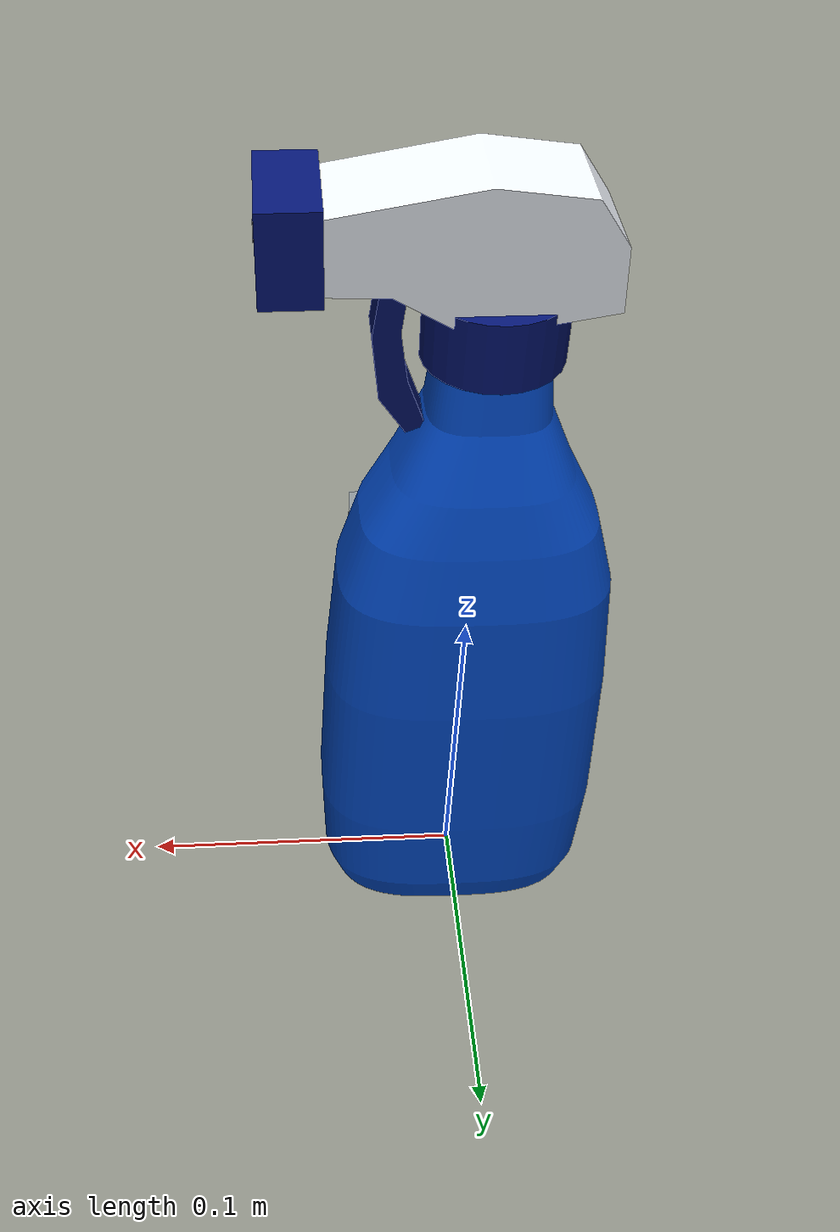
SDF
<?xml version='1.0' encoding='utf-8'?>
<sdf version="1.7">
  <model name="spray_bottle">
    <static>false</static>
    <link name="bottle">
      <inertial>
        <pose>0 0 0.095 0 0 0</pose>
        <mass>0.55</mass>
        <inertia>
          <ixx>0.0018</ixx>
          <iyy>0.002</iyy>
          <izz>0.00048</izz>
          <ixy>0</ixy>
          <ixz>0</ixz>
          <iyz>0</iyz>
        </inertia>
      </inertial>
      <visual name="blue_contoured_body">
        <pose>0 0 0 0 0 0</pose>
        <geometry>
          <mesh>
            <uri>model://spray_bottle/meshes/contoured_bottle.obj</uri>
          </mesh>
        </geometry>
        <material>
          <ambient>0.015 0.30 0.80 1</ambient>
          <diffuse>0.015 0.30 0.80 1</diffuse>
          <specular>0.4 0.4 0.4 1</specular>
        </material>
      </visual>
      <visual name="white_sprayer">
        <pose>0 0 0 0 0 0</pose>
        <geometry>
          <mesh>
            <uri>model://spray_bottle/meshes/sprayer_shell.obj</uri>
          </mesh>
        </geometry>
        <material>
          <ambient>0.93 0.95 0.98 1</ambient>
          <diffuse>0.93 0.95 0.98 1</diffuse>
          <specular>0.4 0.4 0.4 1</specular>
        </material>
      </visual>
      <visual name="blue_trigger">
        <pose>0 0 0 0 0 0</pose>
        <geometry>
          <mesh>
            <uri>model://spray_bottle/meshes/curved_trigger.obj</uri>
          </mesh>
        </geometry>
        <material>
          <ambient>0.015 0.07 0.40 1</ambient>
          <diffuse>0.015 0.07 0.40 1</diffuse>
          <specular>0.4 0.4 0.4 1</specular>
        </material>
      </visual>
      <visual name="blue_screw_cap">
        <pose>0 0 0.201 0 0 0</pose>
        <geometry>
          <cylinder>
            <radius>0.018</radius>
            <length>0.018</length>
          </cylinder>
        </geometry>
        <material>
          <ambient>0.015 0.08 0.45 1</ambient>
          <diffuse>0.015 0.08 0.45 1</diffuse>
          <specular>0.4 0.4 0.4 1</specular>
        </material>
      </visual>
      <visual name="blue_nozzle">
        <pose>.049 0 .225 0 0 0</pose>
        <geometry>
          <box>
            <size>0.015 0.03 0.023</size>
          </box>
        </geometry>
        <material>
          <ambient>0.015 0.08 0.45 1</ambient>
          <diffuse>0.015 0.08 0.45 1</diffuse>
          <specular>0.4 0.4 0.4 1</specular>
        </material>
      </visual>
      <visual name="nozzle_hole">
        <pose>.0567 0 .225 0 1.5707963 0</pose>
        <geometry>
          <cylinder>
            <radius>0.0025</radius>
            <length>0.0005</length>
          </cylinder>
        </geometry>
        <material>
          <ambient>0.01 0.015 0.025 1</ambient>
          <diffuse>0.01 0.015 0.025 1</diffuse>
          <specular>0.4 0.4 0.4 1</specular>
        </material>
      </visual>
      <visual name="white_label">
        <pose>0 -.030 .087 0 0 0</pose>
        <geometry>
          <box>
            <size>0.066 0.0004 0.082</size>
          </box>
        </geometry>
        <material>
          <ambient>0.92 0.97 1 1</ambient>
          <diffuse>0.92 0.97 1 1</diffuse>
          <specular>0.4 0.4 0.4 1</specular>
        </material>
      </visual>
      <visual name="colin_red_logo">
        <pose>0 0 0 0 0 0</pose>
        <geometry>
          <mesh>
            <uri>model://spray_bottle/meshes/colin_logo.obj</uri>
          </mesh>
        </geometry>
        <material>
          <ambient>0.90 0.015 0.035 1</ambient>
          <diffuse>0.90 0.015 0.035 1</diffuse>
          <specular>0.4 0.4 0.4 1</specular>
        </material>
      </visual>
      <visual name="label_text">
        <pose>0 0 0 0 0 0</pose>
        <geometry>
          <mesh>
            <uri>model://spray_bottle/meshes/glass_cleaner.obj</uri>
          </mesh>
        </geometry>
        <material>
          <ambient>0.01 0.11 0.36 1</ambient>
          <diffuse>0.01 0.11 0.36 1</diffuse>
          <specular>0.4 0.4 0.4 1</specular>
        </material>
      </visual>
      <visual name="label_bottom_band">
        <pose>0 -.0303 .055 0 0 0</pose>
        <geometry>
          <box>
            <size>0.062 0.0003 0.012</size>
          </box>
        </geometry>
        <material>
          <ambient>0.015 0.30 0.75 1</ambient>
          <diffuse>0.015 0.30 0.75 1</diffuse>
          <specular>0.4 0.4 0.4 1</specular>
        </material>
      </visual>
      <collision name="body">
        <pose>0 0 .068 0 0 0</pose>
        <geometry>
          <box>
            <size>0.076 0.052 0.134</size>
          </box>
        </geometry>
        <surface>
          <friction>
            <ode>
              <mu>0.7</mu>
              <mu2>0.7</mu2>
            </ode>
          </friction>
        </surface>
      </collision>
      <collision name="shoulder">
        <pose>0 0 .145 0 0 0</pose>
        <geometry>
          <box>
            <size>0.057 0.04 0.03</size>
          </box>
        </geometry>
        <surface>
          <friction>
            <ode>
              <mu>0.7</mu>
              <mu2>0.7</mu2>
            </ode>
          </friction>
        </surface>
      </collision>
      <collision name="neck">
        <pose>0 0 .178 0 0 0</pose>
        <geometry>
          <cylinder>
            <radius>0.016</radius>
            <length>0.041</length>
          </cylinder>
        </geometry>
        <surface>
          <friction>
            <ode>
              <mu>0.7</mu>
              <mu2>0.7</mu2>
            </ode>
          </friction>
        </surface>
      </collision>
      <collision name="cap">
        <pose>0 0 .201 0 0 0</pose>
        <geometry>
          <cylinder>
            <radius>0.018</radius>
            <length>0.018</length>
          </cylinder>
        </geometry>
        <surface>
          <friction>
            <ode>
              <mu>0.7</mu>
              <mu2>0.7</mu2>
            </ode>
          </friction>
        </surface>
      </collision>
      <collision name="head">
        <pose>.015 0 .224 0 0 0</pose>
        <geometry>
          <box>
            <size>0.081 0.03 0.028</size>
          </box>
        </geometry>
        <surface>
          <friction>
            <ode>
              <mu>0.7</mu>
              <mu2>0.7</mu2>
            </ode>
          </friction>
        </surface>
      </collision>
      <collision name="trigger">
        <pose>.024 0 .193 0 0 0</pose>
        <geometry>
          <box>
            <size>0.01 0.01 0.038</size>
          </box>
        </geometry>
        <surface>
          <friction>
            <ode>
              <mu>0.7</mu>
              <mu2>0.7</mu2>
            </ode>
          </friction>
        </surface>
      </collision>
    </link>
  </model>
</sdf>
